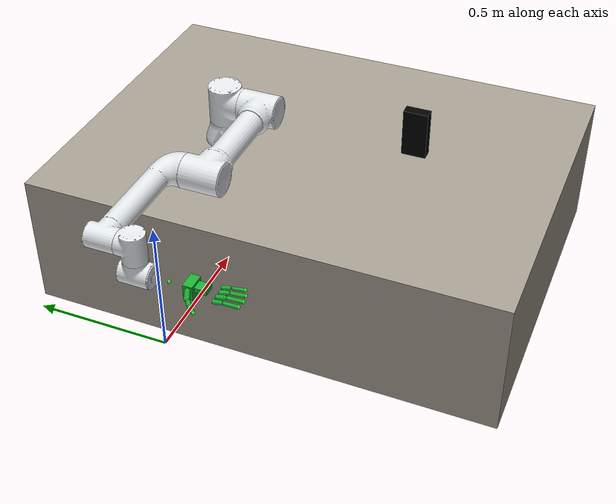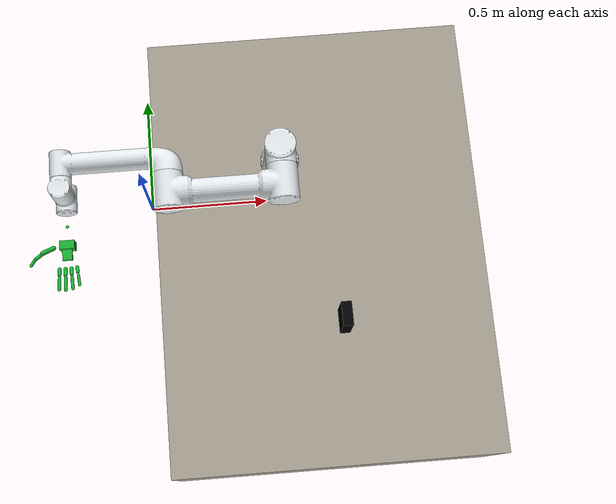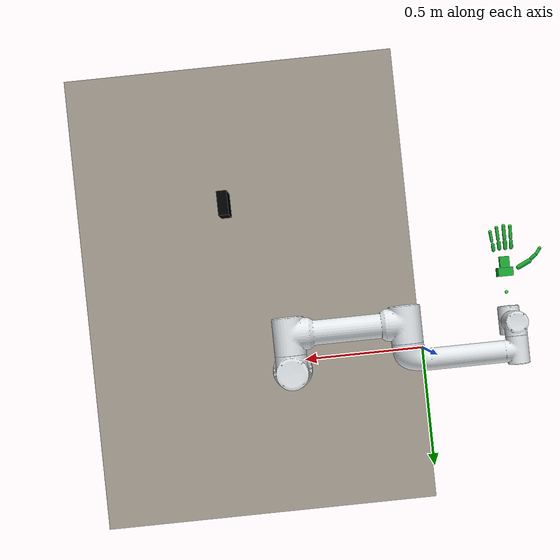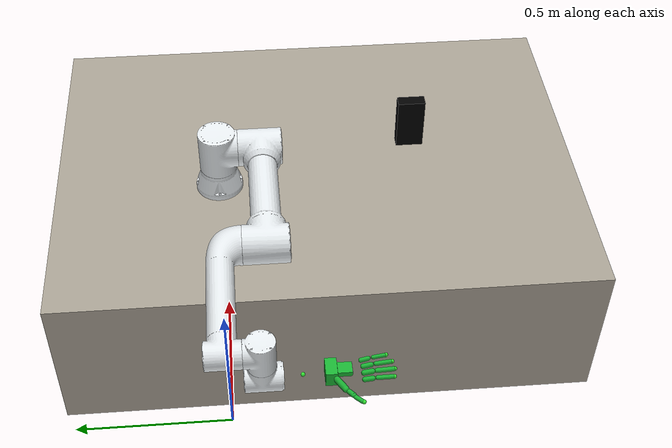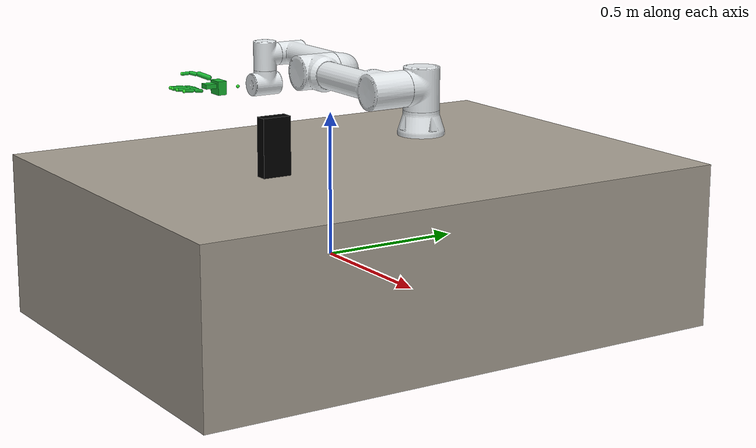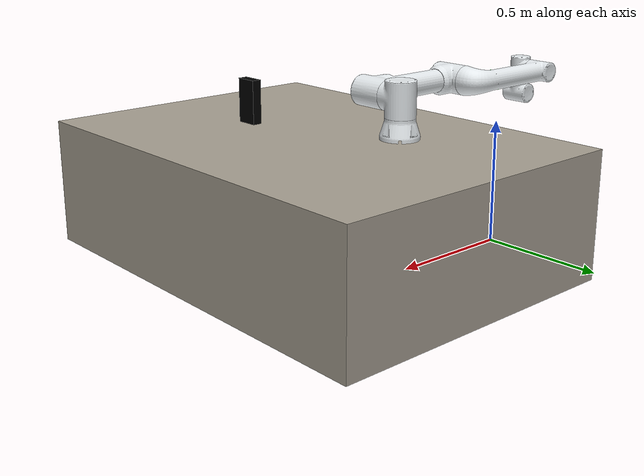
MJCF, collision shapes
<?xml version='1.0' encoding='utf-8'?>
<mujoco model="fr5_rh56e2_scene">
  <compiler angle="radian" />
  <asset>
    <mesh name="meshes__fr5v6__visual__base_link" content_type="model/obj" file="E:\A_mujoco\UR5_INSPARE\assets\base_scene\meshes__fr5v6__visual__base_link.obj" />
    <mesh name="meshes__fr5v6__visual__j1_link" content_type="model/obj" file="E:\A_mujoco\UR5_INSPARE\assets\base_scene\meshes__fr5v6__visual__j1_link.obj" />
    <mesh name="meshes__fr5v6__visual__j2_link" content_type="model/obj" file="E:\A_mujoco\UR5_INSPARE\assets\base_scene\meshes__fr5v6__visual__j2_link.obj" />
    <mesh name="meshes__fr5v6__visual__j3_link" content_type="model/obj" file="E:\A_mujoco\UR5_INSPARE\assets\base_scene\meshes__fr5v6__visual__j3_link.obj" />
    <mesh name="meshes__fr5v6__visual__j4_link" content_type="model/obj" file="E:\A_mujoco\UR5_INSPARE\assets\base_scene\meshes__fr5v6__visual__j4_link.obj" />
    <mesh name="meshes__fr5v6__visual__j5_link" content_type="model/obj" file="E:\A_mujoco\UR5_INSPARE\assets\base_scene\meshes__fr5v6__visual__j5_link.obj" />
    <mesh name="meshes__fr5v6__visual__j6_link" content_type="model/obj" file="E:\A_mujoco\UR5_INSPARE\assets\base_scene\meshes__fr5v6__visual__j6_link.obj" />
    <mesh name="meshes__base_link" content_type="model/stl" file="E:\A_mujoco\UR5_INSPARE\assets\base_scene\meshes__base_link.stl" />
    <mesh name="meshes__right_plam_1" content_type="model/stl" file="E:\A_mujoco\UR5_INSPARE\assets\base_scene\meshes__right_plam_1.stl" />
    <mesh name="meshes__right_plam_2" content_type="model/stl" file="E:\A_mujoco\UR5_INSPARE\assets\base_scene\meshes__right_plam_2.stl" />
    <mesh name="meshes__right_plam_force_sensor" content_type="model/stl" file="E:\A_mujoco\UR5_INSPARE\assets\base_scene\meshes__right_plam_force_sensor.stl" />
    <mesh name="meshes__right_thumb_1" content_type="model/stl" file="E:\A_mujoco\UR5_INSPARE\assets\base_scene\meshes__right_thumb_1.stl" />
    <mesh name="meshes__right_thumb_2" content_type="model/stl" file="E:\A_mujoco\UR5_INSPARE\assets\base_scene\meshes__right_thumb_2.stl" />
    <mesh name="meshes__right_thumb_3" content_type="model/stl" file="E:\A_mujoco\UR5_INSPARE\assets\base_scene\meshes__right_thumb_3.stl" />
    <mesh name="meshes__right_thumb_force_sensor_2" content_type="model/stl" file="E:\A_mujoco\UR5_INSPARE\assets\base_scene\meshes__right_thumb_force_sensor_2.stl" />
    <mesh name="meshes__right_thumb_4" content_type="model/stl" file="E:\A_mujoco\UR5_INSPARE\assets\base_scene\meshes__right_thumb_4.stl" />
    <mesh name="meshes__right_thumb_force_sensor_3" content_type="model/stl" file="E:\A_mujoco\UR5_INSPARE\assets\base_scene\meshes__right_thumb_force_sensor_3.stl" />
    <mesh name="meshes__right_thumb_force_sensor_4" content_type="model/stl" file="E:\A_mujoco\UR5_INSPARE\assets\base_scene\meshes__right_thumb_force_sensor_4.stl" />
    <mesh name="meshes__right_thumb_force_sensor_1" content_type="model/stl" file="E:\A_mujoco\UR5_INSPARE\assets\base_scene\meshes__right_thumb_force_sensor_1.stl" />
    <mesh name="meshes__right_index_1" content_type="model/stl" file="E:\A_mujoco\UR5_INSPARE\assets\base_scene\meshes__right_index_1.stl" />
    <mesh name="meshes__right_index_2" content_type="model/stl" file="E:\A_mujoco\UR5_INSPARE\assets\base_scene\meshes__right_index_2.stl" />
    <mesh name="meshes__right_index_force_sensor_2" content_type="model/stl" file="E:\A_mujoco\UR5_INSPARE\assets\base_scene\meshes__right_index_force_sensor_2.stl" />
    <mesh name="meshes__right_index_force_sensor_3" content_type="model/stl" file="E:\A_mujoco\UR5_INSPARE\assets\base_scene\meshes__right_index_force_sensor_3.stl" />
    <mesh name="meshes__right_index_force_sensor_1" content_type="model/stl" file="E:\A_mujoco\UR5_INSPARE\assets\base_scene\meshes__right_index_force_sensor_1.stl" />
    <mesh name="meshes__right_middle_1" content_type="model/stl" file="E:\A_mujoco\UR5_INSPARE\assets\base_scene\meshes__right_middle_1.stl" />
    <mesh name="meshes__right_middle_2" content_type="model/stl" file="E:\A_mujoco\UR5_INSPARE\assets\base_scene\meshes__right_middle_2.stl" />
    <mesh name="meshes__right_middle_force_sensor_2" content_type="model/stl" file="E:\A_mujoco\UR5_INSPARE\assets\base_scene\meshes__right_middle_force_sensor_2.stl" />
    <mesh name="meshes__right_middle_force_sensor_3" content_type="model/stl" file="E:\A_mujoco\UR5_INSPARE\assets\base_scene\meshes__right_middle_force_sensor_3.stl" />
    <mesh name="meshes__right_middle_force_sensor_1" content_type="model/stl" file="E:\A_mujoco\UR5_INSPARE\assets\base_scene\meshes__right_middle_force_sensor_1.stl" />
    <mesh name="meshes__right_ring_1" content_type="model/stl" file="E:\A_mujoco\UR5_INSPARE\assets\base_scene\meshes__right_ring_1.stl" />
    <mesh name="meshes__right_ring_2" content_type="model/stl" file="E:\A_mujoco\UR5_INSPARE\assets\base_scene\meshes__right_ring_2.stl" />
    <mesh name="meshes__right_ring_force_sensor_2" content_type="model/stl" file="E:\A_mujoco\UR5_INSPARE\assets\base_scene\meshes__right_ring_force_sensor_2.stl" />
    <mesh name="meshes__right_ring_force_sensor_3" content_type="model/stl" file="E:\A_mujoco\UR5_INSPARE\assets\base_scene\meshes__right_ring_force_sensor_3.stl" />
    <mesh name="meshes__right_ring_force_sensor_1" content_type="model/stl" file="E:\A_mujoco\UR5_INSPARE\assets\base_scene\meshes__right_ring_force_sensor_1.stl" />
    <mesh name="meshes__right_little_1" content_type="model/stl" file="E:\A_mujoco\UR5_INSPARE\assets\base_scene\meshes__right_little_1.stl" />
    <mesh name="meshes__right_little_2" content_type="model/stl" file="E:\A_mujoco\UR5_INSPARE\assets\base_scene\meshes__right_little_2.stl" />
    <mesh name="meshes__right_little_force_sensor_2" content_type="model/stl" file="E:\A_mujoco\UR5_INSPARE\assets\base_scene\meshes__right_little_force_sensor_2.stl" />
    <mesh name="meshes__right_little_force_sensor_3" content_type="model/stl" file="E:\A_mujoco\UR5_INSPARE\assets\base_scene\meshes__right_little_force_sensor_3.stl" />
    <mesh name="meshes__right_little_force_sensor_1" content_type="model/stl" file="E:\A_mujoco\UR5_INSPARE\assets\base_scene\meshes__right_little_force_sensor_1.stl" />
    <mesh name="task_object_visual_mesh" file="E:\A_mujoco\UR5_INSPARE\build\004_sugar_box_visual.obj" />
  </asset>
  <worldbody>
    <geom pos="0.55 0 0.52" quat="1 0 0 0" type="mesh" rgba="0.89804 0.91765 0.92941 1" mesh="meshes__fr5v6__visual__base_link" />
    <body name="j1_Link" pos="0.55 0 0.52">
      <inertial pos="5.0029e-07 -0.0040922 0.14629" quat="0.999588 0.0287044 7.54149e-06 -1.58789e-05" mass="4.3771" diaginertia="0.010731 0.0104154 0.00817191" />
      <joint name="j1" pos="0 0 0" axis="0 0 1" range="-3.0543 3.0543" actuatorfrcrange="-150 150" />
      <geom type="mesh" rgba="0.89804 0.91765 0.92941 1" mesh="meshes__fr5v6__visual__j1_link" />
      <body name="j2_Link" pos="0 0 0.152" quat="0.707105 0.707108 0 0">
        <inertial pos="-0.2125 -5.7643e-09 0.1346" quat="0.5 0.5 0.5 0.5" mass="14.458" diaginertia="0.4559 0.44974 0.028392" />
        <joint name="j2" pos="0 0 0" axis="0 0 1" range="-4.6251 1.4835" actuatorfrcrange="-150 150" />
        <geom type="mesh" rgba="0.89804 0.91765 0.92941 1" mesh="meshes__fr5v6__visual__j2_link" />
        <body name="j3_Link" pos="-0.425 0 0">
          <inertial pos="-0.18793 -8.4503e-07 0.0066357" quat="0.510607 0.489172 0.489196 0.510568" mass="7.6737" diaginertia="0.16971 0.168834 0.00821541" />
          <joint name="j3" pos="0 0 0" axis="0 0 1" range="-2.8274 2.8274" actuatorfrcrange="-150 150" />
          <geom type="mesh" rgba="0.89804 0.91765 0.92941 1" mesh="meshes__fr5v6__visual__j3_link" />
          <body name="j4_Link" pos="-0.39501 0 0">
            <inertial pos="4.98e-07 -0.003754 0.097155" quat="0.736149 0.676819 -6.33095e-05 7.15237e-05" mass="1.6266" diaginertia="0.00216 0.00199337 0.00154233" />
            <joint name="j4" pos="0 0 0" axis="0 0 1" range="-4.6251 1.4835" actuatorfrcrange="-28 28" />
            <geom type="mesh" rgba="0.89804 0.91765 0.92941 1" mesh="meshes__fr5v6__visual__j4_link" />
            <body name="j5_Link" pos="0 0 0.1021" quat="0.707105 0.707108 0 0">
              <inertial pos="-4.5588e-07 0.0038617 0.098257" quat="0.68712 0.726544 0.000128667 -0.000114125" mass="1.5812" diaginertia="0.0020612 0.00195889 0.00144611" />
              <joint name="j5" pos="0 0 0" axis="0 0 1" range="-3.0543 3.0543" actuatorfrcrange="-28 28" />
              <geom type="mesh" rgba="0.89804 0.91765 0.92941 1" mesh="meshes__fr5v6__visual__j5_link" />
              <body name="j6_Link" pos="0 0 0.102" quat="0.707105 -0.707108 0 0">
                <inertial pos="-0.00706182 -0.0120964 0.119881" quat="0.989838 -0.0979298 -0.0712143 -0.0745644" mass="1.02215" diaginertia="0.00788102 0.00710895 0.0015185" />
                <joint name="j6" pos="0 0 0" axis="0 0 1" range="-3.0543 3.0543" actuatorfrcrange="-28 28" />
                <geom type="mesh" rgba="0.89804 0.91765 0.92941 1" mesh="meshes__fr5v6__visual__j6_link" contype="0" conaffinity="0" />
                <geom pos="0 0 0.109013" quat="-1.64085e-08 0.707107 0.707107 -1.64085e-08" type="mesh" rgba="1 1 1 1" mesh="meshes__base_link" contype="0" conaffinity="0" />
                <geom pos="1.41551e-09 0 0.139513" quat="-0.707107 -2.61376e-06 -2.61376e-06 -0.707107" type="mesh" rgba="0.25 0.25 0.25 1" mesh="meshes__right_plam_1" contype="0" conaffinity="0" />
                <geom pos="1.41551e-09 0 0.139513" quat="-0.707107 -2.61376e-06 -2.61376e-06 -0.707107" type="mesh" rgba="1 1 1 1" mesh="meshes__right_plam_2" contype="0" conaffinity="0" />
                <geom pos="-0.00036753 0.012296 0.228614" quat="3.90296e-06 -1.32455e-06 -0.707108 -0.707105" type="mesh" rgba="0.25 0.25 0.25 1" mesh="meshes__right_plam_force_sensor" contype="0" conaffinity="0" />
                <body name="rh56e2_right_thumb_1" pos="-0.0269 0.02101 0.191613" quat="0.707107 -2.58094e-06 -2.58094e-06 0.707107">
                  <inertial pos="0.00067 0.00494 -0.00671" quat="0.640735 0.761552 -0.0798523 -0.0558616" mass="0.01537" diaginertia="9.91429e-07 8.69962e-07 6.55049e-07" />
                  <joint name="rh56e2_right_thumb_1_joint" pos="0 0 0" axis="0 0 -1" range="0 1.658" actuatorfrcrange="-8 8" damping="0.25" />
                  <geom type="mesh" rgba="1 1 1 1" mesh="meshes__right_thumb_1" contype="0" conaffinity="0" />
                  <body name="rh56e2_right_thumb_2" pos="0.013438 0.012862 -0.0076" quat="0.499998 0.5 -0.500002 -0.5">
                    <inertial pos="-0.0330106 0.0134179 0.00535844" quat="0.0757838 0.603373 -0.260406 0.749924" mass="0.110574" diaginertia="4.33122e-05 3.98818e-05 1.33843e-05" />
                    <joint name="rh56e2_right_thumb_2_joint" pos="0 0 0" axis="0.17365 0 -0.984808" range="0 0.62" actuatorfrcrange="-6 6" damping="0.18" />
                    <geom type="mesh" rgba="0.25 0.25 0.25 1" mesh="meshes__right_thumb_2" contype="0" conaffinity="0" />
                    <geom pos="-0.023424 0.033251 0.007073" quat="0.639162 -0.398928 0.551278 0.358359" type="mesh" rgba="0.25 0.25 0.25 1" mesh="meshes__right_thumb_force_sensor_1" contype="0" conaffinity="0" />
                    <body name="rh56e2_right_thumb_3" pos="-0.052954 0.032799 -0.0093372">
                      <inertial pos="-0.0111153 0.00147328 0.0113971" quat="0.692943 0.608412 0.382952 -0.0548777" mass="0.017909" diaginertia="3.37093e-06 3.33783e-06 2.42494e-06" />
                      <joint name="rh56e2_right_thumb_3_joint" pos="0 0 0" axis="0.17365 0 -0.984808" range="0 0.541052" actuatorfrcrange="-5 5" damping="0.12" />
                      <geom type="mesh" rgba="0.25 0.25 0.25 1" mesh="meshes__right_thumb_3" contype="0" conaffinity="0" />
                      <geom pos="-0.0080057 0.016443 0.0096921" quat="0.673514 -0.37233 0.560997 0.30501" type="mesh" rgba="0.25 0.25 0.25 1" mesh="meshes__right_thumb_force_sensor_2" contype="0" conaffinity="0" />
                      <body name="rh56e2_right_thumb_4" pos="-0.01865 0.013373 -0.0022731">
                        <inertial pos="-0.0128424 0.00731961 0.0100428" quat="0.671895 0.699649 0.230737 -0.0762137" mass="0.00784659" diaginertia="1.33071e-06 1.21782e-06 6.26028e-07" />
                        <joint name="rh56e2_right_thumb_4_joint" pos="0 0 0" axis="0.17365 0 -0.984808" range="0 0.455531" actuatorfrcrange="-4 4" damping="0.1" />
                        <geom type="mesh" rgba="0.25 0.25 0.25 1" mesh="meshes__right_thumb_4" contype="0" conaffinity="0" />
                        <geom pos="-0.0076345 0.020486 0.0088067" quat="0.727041 -0.241283 0.610081 0.202473" type="mesh" rgba="0.25 0.25 0.25 1" mesh="meshes__right_thumb_force_sensor_3" contype="0" conaffinity="0" />
                        <geom pos="-0.01883 0.027914 0.0068326" quat="0.490906 -0.588062 0.41181 0.493565" type="mesh" rgba="0.25 0.25 0.25 1" mesh="meshes__right_thumb_force_sensor_4" contype="0" conaffinity="0" />
                        <geom name="proxy_thumb_distal" contype="1" conaffinity="1" condim="6" friction="1.1 0.02 0.002" margin="0.0015" rgba="0.1 0.7 0.2 0.08" type="capsule" fromto="-0.003 0.007 0.004  -0.017 0.025 0.007" size="0.006" />
                        <site name="thumb_tip" pos="-0.01883 0.027914 0.0068326" size="0.006" rgba="0.2 0.9 0.2 1" type="sphere" />
                      </body>
                      <geom name="proxy_thumb_middle" contype="1" conaffinity="1" condim="6" friction="1.1 0.02 0.002" margin="0.0015" rgba="0.1 0.7 0.2 0.08" type="capsule" fromto="-0.002 0.006 0.004  -0.017 0.017 0.001" size="0.007" />
                    </body>
                    <geom name="proxy_thumb_proximal" contype="1" conaffinity="1" condim="6" friction="1.1 0.02 0.002" margin="0.0015" rgba="0.1 0.7 0.2 0.08" type="capsule" fromto="-0.008 0.012 0.003  -0.047 0.031 -0.006" size="0.009" />
                  </body>
                </body>
                <body name="rh56e2_right_index_1" pos="-0.038679 0.000564671 0.265413" quat="0.508649 0.491198 0.491198 0.508649">
                  <inertial pos="0.00109257 0.0106015 0.00808668" quat="0.55995 0.462516 -0.532634 0.434554" mass="0.0188928" diaginertia="3.94835e-06 3.75686e-06 1.20374e-06" />
                  <joint name="rh56e2_right_index_1_joint" pos="0 0 0" axis="0 0 -1" range="0 1.4381" actuatorfrcrange="-6 6" damping="0.16" />
                  <geom type="mesh" rgba="0.25 0.25 0.25 1" mesh="meshes__right_index_1" contype="0" conaffinity="0" />
                  <geom pos="0.012046 0.019649 0.006651" quat="0.701686 -0.0622873 0.704358 0.0873853" type="mesh" rgba="0.25 0.25 0.25 1" mesh="meshes__right_index_force_sensor_1" contype="0" conaffinity="0" />
                  <body name="rh56e2_right_index_2" pos="0.0034259 0.032596 0.00055">
                    <inertial pos="-0.000980626 0.0168026 0.00807178" quat="0.547952 0.365437 -0.596996 0.458041" mass="0.0113437" diaginertia="3.2034e-06 3.00377e-06 5.28116e-07" />
                    <joint name="rh56e2_right_index_2_joint" pos="0 0 0" axis="0 0 -1" range="0 1.47637" actuatorfrcrange="-4 4" damping="0.1" />
                    <geom type="mesh" rgba="0.25 0.25 0.25 1" mesh="meshes__right_index_2" contype="0" conaffinity="0" />
                    <geom pos="0.0081655 0.037446 0.0060795" quat="0.698536 0.13559 0.693985 -0.109758" type="mesh" rgba="0.25 0.25 0.25 1" mesh="meshes__right_index_force_sensor_2" contype="0" conaffinity="0" />
                    <geom pos="0.0086237 0.052572 0.0060954" quat="0.658743 -0.226725 0.669773 0.257017" type="mesh" rgba="0.25 0.25 0.25 1" mesh="meshes__right_index_force_sensor_3" contype="0" conaffinity="0" />
                    <geom name="proxy_index_distal" contype="1" conaffinity="1" condim="6" friction="1.1 0.02 0.002" margin="0.0015" rgba="0.1 0.7 0.2 0.08" type="capsule" fromto="0.006 0.008 0.006  0.0085 0.05 0.006" size="0.006" />
                    <site name="index_tip" pos="0.0086237 0.052572 0.0060954" size="0.006" rgba="0.2 0.9 0.2 1" type="sphere" />
                  </body>
                  <geom name="proxy_index_proximal" contype="1" conaffinity="1" condim="6" friction="1.1 0.02 0.002" margin="0.0015" rgba="0.1 0.7 0.2 0.08" type="capsule" fromto="0.004 0.006 0.006  0.008 0.028 0.006" size="0.007" />
                </body>
                <body name="rh56e2_right_middle_1" pos="-0.0171 0.00056467 0.266013" quat="0.500001 0.499999 0.499999 0.500001">
                  <inertial pos="0.00114404 0.0108212 0.00809663" quat="0.558867 0.463915 -0.531422 0.435938" mass="0.0188628" diaginertia="3.94167e-06 3.75203e-06 1.20153e-06" />
                  <joint name="rh56e2_right_middle_1_joint" pos="0 0 0" axis="0 0 -1" range="0 1.4381" actuatorfrcrange="-6 6" damping="0.16" />
                  <geom type="mesh" rgba="0.25 0.25 0.25 1" mesh="meshes__right_middle_1" contype="0" conaffinity="0" />
                  <geom pos="0.012046 0.019649 0.006651" quat="0.703133 -0.0748445 0.703136 0.0748448" type="mesh" rgba="0.25 0.25 0.25 1" mesh="meshes__right_middle_force_sensor_1" contype="0" conaffinity="0" />
                  <body name="rh56e2_right_middle_2" pos="0.0034259 0.032596 0.00055">
                    <inertial pos="0.00129017 0.022433 0.00807154" quat="0.561822 0.367162 -0.598502 0.437428" mass="0.0179991" diaginertia="6.09155e-06 5.86943e-06 8.51536e-07" />
                    <joint name="rh56e2_right_middle_2_joint" pos="0 0 0" axis="0 0 -1" range="0 1.47637" actuatorfrcrange="-4 4" damping="0.1" />
                    <geom type="mesh" rgba="0.25 0.25 0.25 1" mesh="meshes__right_middle_2" contype="0" conaffinity="0" />
                    <geom pos="0.0090859 0.040963 0.0061003" quat="0.694854 0.13106 0.694856 -0.13106" type="mesh" rgba="0.25 0.25 0.25 1" mesh="meshes__right_middle_force_sensor_2" contype="0" conaffinity="0" />
                    <geom pos="0.0098294 0.056051 0.0061006" quat="0.66729 -0.233926 0.667293 0.233927" type="mesh" rgba="0.25 0.25 0.25 1" mesh="meshes__right_middle_force_sensor_3" contype="0" conaffinity="0" />
                    <geom name="proxy_middle_distal" contype="1" conaffinity="1" condim="6" friction="1.1 0.02 0.002" margin="0.0015" rgba="0.1 0.7 0.2 0.08" type="capsule" fromto="0.007 0.008 0.006  0.0095 0.053 0.006" size="0.0065" />
                    <site name="middle_tip" pos="0.0098294 0.056051 0.0061006" size="0.006" rgba="0.2 0.9 0.2 1" type="sphere" />
                  </body>
                  <geom name="proxy_middle_proximal" contype="1" conaffinity="1" condim="6" friction="1.1 0.02 0.002" margin="0.0015" rgba="0.1 0.7 0.2 0.08" type="capsule" fromto="0.0045 0.006 0.006  0.009 0.029 0.006" size="0.0075" />
                </body>
                <body name="rh56e2_right_ring_1" pos="0.00453021 0.00056467 0.265843" quat="0.486731 0.512926 0.512926 0.486731">
                  <inertial pos="0.000970415 0.0101672 0.00864067" quat="0.546403 0.481534 -0.539503 0.422498" mass="0.0188928" diaginertia="3.95018e-06 3.76424e-06 1.19901e-06" />
                  <joint name="rh56e2_right_ring_1_joint" pos="0 0 0" axis="0 0 -1" range="0 1.4381" actuatorfrcrange="-6 6" damping="0.16" />
                  <geom type="mesh" rgba="0.25 0.25 0.25 1" mesh="meshes__right_ring_1" contype="0" conaffinity="0" />
                  <geom pos="0.012046 0.019649 0.006651" quat="0.704887 -0.0936618 0.700876 0.0559809" type="mesh" rgba="0.25 0.25 0.25 1" mesh="meshes__right_ring_force_sensor_1" contype="0" conaffinity="0" />
                  <body name="rh56e2_right_ring_2" pos="0.0034259 0.032596 0.00055">
                    <inertial pos="-0.00133295 0.0162914 0.00895521" quat="0.52677 0.377578 -0.608846 0.457444" mass="0.0113437" diaginertia="3.21223e-06 3.01634e-06 5.31075e-07" />
                    <joint name="rh56e2_right_ring_2_joint" pos="0 0 0" axis="0 0 -1" range="0 1.47637" actuatorfrcrange="-4 4" damping="0.1" />
                    <geom type="mesh" rgba="0.25 0.25 0.25 1" mesh="meshes__right_ring_2" contype="0" conaffinity="0" />
                    <geom pos="0.0081655 0.037446 0.0060795" quat="0.692694 0.103257 0.699527 -0.142038" type="mesh" rgba="0.25 0.25 0.25 1" mesh="meshes__right_ring_force_sensor_2" contype="0" conaffinity="0" />
                    <geom pos="0.0086237 0.052572 0.0060954" quat="0.6723 -0.264487 0.655779 0.219118" type="mesh" rgba="0.25 0.25 0.25 1" mesh="meshes__right_ring_force_sensor_3" contype="0" conaffinity="0" />
                    <geom name="proxy_ring_distal" contype="1" conaffinity="1" condim="6" friction="1.1 0.02 0.002" margin="0.0015" rgba="0.1 0.7 0.2 0.08" type="capsule" fromto="0.006 0.008 0.006  0.0085 0.05 0.006" size="0.006" />
                    <site name="ring_tip" pos="0.0086237 0.052572 0.0060954" size="0.006" rgba="0.2 0.9 0.2 1" type="sphere" />
                  </body>
                  <geom name="proxy_ring_proximal" contype="1" conaffinity="1" condim="6" friction="1.1 0.02 0.002" margin="0.0015" rgba="0.1 0.7 0.2 0.08" type="capsule" fromto="0.004 0.006 0.006  0.008 0.028 0.006" size="0.007" />
                </body>
                <body name="rh56e2_right_little_1" pos="0.025916 0.000564669 0.262663" quat="0.473153 0.525477 0.525477 0.473153">
                  <inertial pos="0.000599155 0.00971112 0.00916498" quat="0.527401 0.506679 -0.540235 0.416258" mass="0.0188928" diaginertia="3.94629e-06 3.7633e-06 1.19717e-06" />
                  <joint name="rh56e2_right_little_1_joint" pos="0 0 0" axis="0 0 -1" range="0 1.4381" actuatorfrcrange="-5 5" damping="0.14" />
                  <geom type="mesh" rgba="0.25 0.25 0.25 1" mesh="meshes__right_little_1" contype="0" conaffinity="0" />
                  <geom pos="0.012046 0.019649 0.006651" quat="0.706132 -0.112374 0.69812 0.0371073" type="mesh" rgba="0.25 0.25 0.25 1" mesh="meshes__right_little_force_sensor_1" contype="0" conaffinity="0" />
                  <body name="rh56e2_right_little_2" pos="0.0034259 0.032596 0.00055">
                    <inertial pos="-0.00148048 0.0158289 0.00973055" quat="0.472706 0.354855 -0.648081 0.480227" mass="0.0120013" diaginertia="2.93409e-06 2.85029e-06 4.70358e-07" />
                    <joint name="rh56e2_right_little_2_joint" pos="0 0 0" axis="0 0 -1" range="0 1.47637" actuatorfrcrange="-3.5 3.5" damping="0.09" />
                    <geom type="mesh" rgba="0.25 0.25 0.25 1" mesh="meshes__right_little_2" contype="0" conaffinity="0" />
                    <geom pos="0.0064512 0.027683 0.0061172" quat="0.689046 0.0814204 0.702404 -0.158792" type="mesh" rgba="0.25 0.25 0.25 1" mesh="meshes__right_little_force_sensor_2" contype="0" conaffinity="0" />
                    <geom pos="0.0063972 0.042707 0.0061154" quat="0.678772 -0.289133 0.645293 0.198161" type="mesh" rgba="0.25 0.25 0.25 1" mesh="meshes__right_little_force_sensor_3" contype="0" conaffinity="0" />
                    <geom name="proxy_little_distal" contype="1" conaffinity="1" condim="6" friction="1.1 0.02 0.002" margin="0.0015" rgba="0.1 0.7 0.2 0.08" type="capsule" fromto="0.0045 0.007 0.006  0.0065 0.041 0.006" size="0.0055" />
                    <site name="little_tip" pos="0.0063972 0.042707 0.0061154" size="0.006" rgba="0.2 0.9 0.2 1" type="sphere" />
                  </body>
                  <geom name="proxy_little_proximal" contype="1" conaffinity="1" condim="6" friction="1.1 0.02 0.002" margin="0.0015" rgba="0.1 0.7 0.2 0.08" type="capsule" fromto="0.0035 0.006 0.006  0.0068 0.026 0.006" size="0.0065" />
                </body>
                <geom name="proxy_palm_main" contype="1" conaffinity="1" condim="6" friction="1.1 0.02 0.002" margin="0.0015" rgba="0.1 0.7 0.2 0.08" type="box" pos="0.0000 0.0045 0.184" quat="-0.707107 -2.61376e-06 -2.61376e-06 -0.707107" size="0.024 0.028 0.016" />
                <geom name="proxy_palm_upper" contype="1" conaffinity="1" condim="6" friction="1.1 0.02 0.002" margin="0.0015" rgba="0.1 0.7 0.2 0.08" type="box" pos="-0.00036753 0.012296 0.221" quat="3.90296e-06 -1.32455e-06 -0.707108 -0.707105" size="0.018 0.02 0.008" />
                <site name="wrist_mount" pos="0 0 0.109013" size="0.006" rgba="0.2 0.9 0.2 1" type="sphere" />
                <site name="palm_center" pos="-0.00036753 0.012296 0.228614" size="0.006" rgba="0.2 0.9 0.2 1" type="sphere" />
              </body>
            </body>
          </body>
        </body>
      </body>
    </body>
    <light name="key_light" pos="1.8 -1.4 2.6" dir="-0.4 0.3 -1" diffuse="0.95 0.95 0.95" specular="0.2 0.2 0.2" castshadow="true" />
    <light name="fill_light" pos="-0.8 1.2 2.0" dir="0.2 -0.2 -1" diffuse="0.45 0.45 0.45" specular="0.05 0.05 0.05" castshadow="false" />
    <geom name="grasp_table" type="box" pos="0.68 -0.32 0.25" size="0.62 0.85 0.25" rgba="0.65 0.62 0.57 1" condim="3" friction="1.0 0.02 0.002" />
    <body name="task_object" pos="0.74 -0.64 0.5875" quat="1.0 0.0 0.0 0.0">
      <freejoint name="task_object_freejoint" />
      <geom name="task_object_collision" mass="0.514" rgba="0 0 0 0" friction="1.1 0.02 0.001" condim="6" margin="0.0015" type="box" size="0.019 0.0445 0.0875" />
      <geom name="task_object_visual" type="mesh" mesh="task_object_visual_mesh" contype="0" conaffinity="0" density="0" mass="0" rgba="0.9 0.9 0.9 1" />
      <site name="task_object_center" type="sphere" size="0.008" rgba="0.9 0.2 0.2 1" />
    </body>
  </worldbody>
  <option timestep="0.002307692308" gravity="0 0 -9.81" integrator="implicitfast" iterations="50" cone="elliptic" />
  <visual>
    <global offwidth="1600" offheight="1200" />
  </visual>
  <equality>
    <joint name="rh56e2_right_thumb_3_joint_mimic" joint1="rh56e2_right_thumb_3_joint" joint2="rh56e2_right_thumb_2_joint" polycoef="0 0.8392 0 0 0" />
    <joint name="rh56e2_right_thumb_4_joint_mimic" joint1="rh56e2_right_thumb_4_joint" joint2="rh56e2_right_thumb_3_joint" polycoef="0 0.891 0 0 0" />
    <joint name="rh56e2_right_index_2_joint_mimic" joint1="rh56e2_right_index_2_joint" joint2="rh56e2_right_index_1_joint" polycoef="0 1.0843 0 0 0" />
    <joint name="rh56e2_right_middle_2_joint_mimic" joint1="rh56e2_right_middle_2_joint" joint2="rh56e2_right_middle_1_joint" polycoef="0 1.0843 0 0 0" />
    <joint name="rh56e2_right_ring_2_joint_mimic" joint1="rh56e2_right_ring_2_joint" joint2="rh56e2_right_ring_1_joint" polycoef="0 1.0843 0 0 0" />
    <joint name="rh56e2_right_little_2_joint_mimic" joint1="rh56e2_right_little_2_joint" joint2="rh56e2_right_little_1_joint" polycoef="0 1.0843 0 0 0" />
  </equality>
  <actuator>
    <position name="j1_act" joint="j1" kp="200" ctrllimited="true" ctrlrange="-3.0543 3.0543" />
    <position name="j2_act" joint="j2" kp="200" ctrllimited="true" ctrlrange="-4.6251 1.4835" />
    <position name="j3_act" joint="j3" kp="200" ctrllimited="true" ctrlrange="-2.8274 2.8274" />
    <position name="j4_act" joint="j4" kp="200" ctrllimited="true" ctrlrange="-4.6251 1.4835" />
    <position name="j5_act" joint="j5" kp="200" ctrllimited="true" ctrlrange="-3.0543 3.0543" />
    <position name="j6_act" joint="j6" kp="200" ctrllimited="true" ctrlrange="-3.0543 3.0543" />
    <position name="rh56e2_right_thumb_1_joint_act" joint="rh56e2_right_thumb_1_joint" kp="42" ctrllimited="true" ctrlrange="0 1.658" />
    <position name="rh56e2_right_thumb_2_joint_act" joint="rh56e2_right_thumb_2_joint" kp="38" ctrllimited="true" ctrlrange="0 0.62" />
    <position name="rh56e2_right_index_1_joint_act" joint="rh56e2_right_index_1_joint" kp="34" ctrllimited="true" ctrlrange="0 1.4381" />
    <position name="rh56e2_right_middle_1_joint_act" joint="rh56e2_right_middle_1_joint" kp="34" ctrllimited="true" ctrlrange="0 1.4381" />
    <position name="rh56e2_right_ring_1_joint_act" joint="rh56e2_right_ring_1_joint" kp="34" ctrllimited="true" ctrlrange="0 1.4381" />
    <position name="rh56e2_right_little_1_joint_act" joint="rh56e2_right_little_1_joint" kp="30" ctrllimited="true" ctrlrange="0 1.4381" />
  </actuator>
  <keyframe>
    <key name="home" qpos="-1.5707963 -1.5707963 -1.5707963 -1.5707963 1.5707963 0 0 0 0 0 0 0 0 0 0 0 0 0 0.74 -0.64 0.5875 1 0 0 0" ctrl="-1.5707963 -1.5707963 -1.5707963 -1.5707963 1.5707963 0 0 0 0 0 0 0" />
  </keyframe>
</mujoco>
